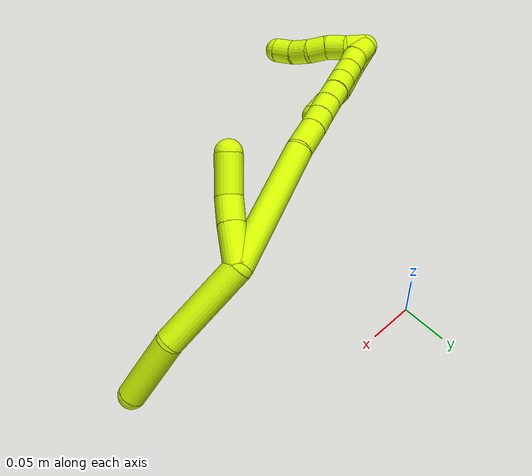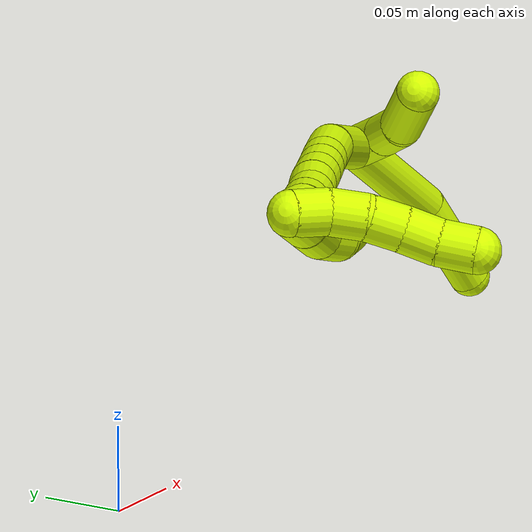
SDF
<sdf version="1.7">
 <world name="default">
  <model name="15">
   <static>0</static>
   <link name="15">
    <collision name="collision-cylinder-e_1_2_8">
     <pose>-0.002143 -0.017551 -0.038202 2.71093 -0.05094 -0.231905</pose>
     <geometry><cylinder><radius>0.0125</radius><length>0.084191</length></cylinder></geometry>
     <surface>
      <friction><ode><mu>1.16</mu><mu2>1.16</mu2><slip1>0</slip1><slip2>0</slip2></ode></friction>
      <contact><ode><kp>1e+06</kp><kd>1</kd><max_vel>0</max_vel><min_depth>0.001</min_depth></ode></contact>
     </surface>
    </collision>
    <visual name="visual-cylinder-e_1_2_8">
     <pose>-0.002143 -0.017551 -0.038202 2.71093 -0.05094 -0.231905</pose>
     <geometry><cylinder><radius>0.0125</radius><length>0.084191</length></cylinder></geometry>
     <material><ambient>0.835294 1 0 1</ambient></material>
    </visual>
    <collision name="collision-cylinder-e_2_8_6">
     <pose>-0.014932 -0.052552 -0.10219 2.54665 -0.329436 -0.993689</pose>
     <geometry><cylinder><radius>0.0125</radius><length>0.065809</length></cylinder></geometry>
     <surface>
      <friction><ode><mu>1.16</mu><mu2>1.16</mu2><slip1>0</slip1><slip2>0</slip2></ode></friction>
      <contact><ode><kp>1e+06</kp><kd>1</kd><max_vel>0</max_vel><min_depth>0.001</min_depth></ode></contact>
     </surface>
    </collision>
    <visual name="visual-cylinder-e_2_8_6">
     <pose>-0.014932 -0.052552 -0.10219 2.54665 -0.329436 -0.993689</pose>
     <geometry><cylinder><radius>0.0125</radius><length>0.065809</length></cylinder></geometry>
     <material><ambient>0.835294 1 0 1</ambient></material>
    </visual>
    <collision name="collision-cylinder-e_1_2_9">
     <pose>0.006412 -0.00949 0.014939 0.56592 0.347599 0.10201</pose>
     <geometry><cylinder><radius>0.0125</radius><length>0.037649</length></cylinder></geometry>
     <surface>
      <friction><ode><mu>1.16</mu><mu2>1.16</mu2><slip1>0</slip1><slip2>0</slip2></ode></friction>
      <contact><ode><kp>1e+06</kp><kd>1</kd><max_vel>0</max_vel><min_depth>0.001</min_depth></ode></contact>
     </surface>
    </collision>
    <visual name="visual-cylinder-e_1_2_9">
     <pose>0.006412 -0.00949 0.014939 0.56592 0.347599 0.10201</pose>
     <geometry><cylinder><radius>0.0125</radius><length>0.037649</length></cylinder></geometry>
     <material><ambient>0.835294 1 0 1</ambient></material>
    </visual>
    <collision name="collision-cylinder-e_2_9_10">
     <pose>0.016825 -0.024763 0.040231 0.509472 0.325314 0.085413</pose>
     <geometry><cylinder><radius>0.0125</radius><length>0.02503</length></cylinder></geometry>
     <surface>
      <friction><ode><mu>1.16</mu><mu2>1.16</mu2><slip1>0</slip1><slip2>0</slip2></ode></friction>
      <contact><ode><kp>1e+06</kp><kd>1</kd><max_vel>0</max_vel><min_depth>0.001</min_depth></ode></contact>
     </surface>
    </collision>
    <visual name="visual-cylinder-e_2_9_10">
     <pose>0.016825 -0.024763 0.040231 0.509472 0.325314 0.085413</pose>
     <geometry><cylinder><radius>0.0125</radius><length>0.02503</length></cylinder></geometry>
     <material><ambient>0.835294 1 0 1</ambient></material>
    </visual>
    <collision name="collision-cylinder-e_3_10_5">
     <pose>0.029966 -0.034005 0.06648 0.214223 0.511979 0.056269</pose>
     <geometry><cylinder><radius>0.0125</radius><length>0.037321</length></cylinder></geometry>
     <surface>
      <friction><ode><mu>1.16</mu><mu2>1.16</mu2><slip1>0</slip1><slip2>0</slip2></ode></friction>
      <contact><ode><kp>1e+06</kp><kd>1</kd><max_vel>0</max_vel><min_depth>0.001</min_depth></ode></contact>
     </surface>
    </collision>
    <visual name="visual-cylinder-e_3_10_5">
     <pose>0.029966 -0.034005 0.06648 0.214223 0.511979 0.056269</pose>
     <geometry><cylinder><radius>0.0125</radius><length>0.037321</length></cylinder></geometry>
     <material><ambient>0.835294 1 0 1</ambient></material>
    </visual>
    <collision name="collision-cylinder-e_1_2_11">
     <pose>-0.006924 -0.01043 0.061716 0.167413 -0.110175 -0.009253</pose>
     <geometry><cylinder><radius>0.0125</radius><length>0.125945</length></cylinder></geometry>
     <surface>
      <friction><ode><mu>1.16</mu><mu2>1.16</mu2><slip1>0</slip1><slip2>0</slip2></ode></friction>
      <contact><ode><kp>1e+06</kp><kd>1</kd><max_vel>0</max_vel><min_depth>0.001</min_depth></ode></contact>
     </surface>
    </collision>
    <visual name="visual-cylinder-e_1_2_11">
     <pose>-0.006924 -0.01043 0.061716 0.167413 -0.110175 -0.009253</pose>
     <geometry><cylinder><radius>0.0125</radius><length>0.125945</length></cylinder></geometry>
     <material><ambient>0.835294 1 0 1</ambient></material>
    </visual>
    <collision name="collision-cylinder-e_2_11_12">
     <pose>-0.018556 -0.025065 0.137892 0.283028 -0.302988 -0.043492</pose>
     <geometry><cylinder><radius>0.0125</radius><length>0.031557</length></cylinder></geometry>
     <surface>
      <friction><ode><mu>1.16</mu><mu2>1.16</mu2><slip1>0</slip1><slip2>0</slip2></ode></friction>
      <contact><ode><kp>1e+06</kp><kd>1</kd><max_vel>0</max_vel><min_depth>0.001</min_depth></ode></contact>
     </surface>
    </collision>
    <visual name="visual-cylinder-e_2_11_12">
     <pose>-0.018556 -0.025065 0.137892 0.283028 -0.302988 -0.043492</pose>
     <geometry><cylinder><radius>0.0125</radius><length>0.031557</length></cylinder></geometry>
     <material><ambient>0.835294 1 0 1</ambient></material>
    </visual>
    <collision name="collision-cylinder-e_3_12_13">
     <pose>-0.026018 -0.032204 0.161784 0.301555 -0.271997 -0.041575</pose>
     <geometry><cylinder><radius>0.0125</radius><length>0.020507</length></cylinder></geometry>
     <surface>
      <friction><ode><mu>1.16</mu><mu2>1.16</mu2><slip1>0</slip1><slip2>0</slip2></ode></friction>
      <contact><ode><kp>1e+06</kp><kd>1</kd><max_vel>0</max_vel><min_depth>0.001</min_depth></ode></contact>
     </surface>
    </collision>
    <visual name="visual-cylinder-e_3_12_13">
     <pose>-0.026018 -0.032204 0.161784 0.301555 -0.271997 -0.041575</pose>
     <geometry><cylinder><radius>0.0125</radius><length>0.020507</length></cylinder></geometry>
     <material><ambient>0.835294 1 0 1</ambient></material>
    </visual>
    <collision name="collision-cylinder-e_4_13_14">
     <pose>-0.031691 -0.038018 0.180662 0.295918 -0.28724 -0.043103</pose>
     <geometry><cylinder><radius>0.0125</radius><length>0.020597</length></cylinder></geometry>
     <surface>
      <friction><ode><mu>1.16</mu><mu2>1.16</mu2><slip1>0</slip1><slip2>0</slip2></ode></friction>
      <contact><ode><kp>1e+06</kp><kd>1</kd><max_vel>0</max_vel><min_depth>0.001</min_depth></ode></contact>
     </surface>
    </collision>
    <visual name="visual-cylinder-e_4_13_14">
     <pose>-0.031691 -0.038018 0.180662 0.295918 -0.28724 -0.043103</pose>
     <geometry><cylinder><radius>0.0125</radius><length>0.020597</length></cylinder></geometry>
     <material><ambient>0.835294 1 0 1</ambient></material>
    </visual>
    <collision name="collision-cylinder-e_5_14_15">
     <pose>-0.037612 -0.043659 0.199734 0.279365 -0.291439 -0.041262</pose>
     <geometry><cylinder><radius>0.0125</radius><length>0.020909</length></cylinder></geometry>
     <surface>
      <friction><ode><mu>1.16</mu><mu2>1.16</mu2><slip1>0</slip1><slip2>0</slip2></ode></friction>
      <contact><ode><kp>1e+06</kp><kd>1</kd><max_vel>0</max_vel><min_depth>0.001</min_depth></ode></contact>
     </surface>
    </collision>
    <visual name="visual-cylinder-e_5_14_15">
     <pose>-0.037612 -0.043659 0.199734 0.279365 -0.291439 -0.041262</pose>
     <geometry><cylinder><radius>0.0125</radius><length>0.020909</length></cylinder></geometry>
     <material><ambient>0.835294 1 0 1</ambient></material>
    </visual>
    <collision name="collision-cylinder-e_6_15_16">
     <pose>-0.043747 -0.049754 0.218326 0.355979 -0.316313 -0.057366</pose>
     <geometry><cylinder><radius>0.0125</radius><length>0.020132</length></cylinder></geometry>
     <surface>
      <friction><ode><mu>1.16</mu><mu2>1.16</mu2><slip1>0</slip1><slip2>0</slip2></ode></friction>
      <contact><ode><kp>1e+06</kp><kd>1</kd><max_vel>0</max_vel><min_depth>0.001</min_depth></ode></contact>
     </surface>
    </collision>
    <visual name="visual-cylinder-e_6_15_16">
     <pose>-0.043747 -0.049754 0.218326 0.355979 -0.316313 -0.057366</pose>
     <geometry><cylinder><radius>0.0125</radius><length>0.020132</length></cylinder></geometry>
     <material><ambient>0.835294 1 0 1</ambient></material>
    </visual>
    <collision name="collision-cylinder-e_7_16_17">
     <pose>-0.049689 -0.055643 0.23657 0.268715 -0.284213 -0.038674</pose>
     <geometry><cylinder><radius>0.0125</radius><length>0.020049</length></cylinder></geometry>
     <surface>
      <friction><ode><mu>1.16</mu><mu2>1.16</mu2><slip1>0</slip1><slip2>0</slip2></ode></friction>
      <contact><ode><kp>1e+06</kp><kd>1</kd><max_vel>0</max_vel><min_depth>0.001</min_depth></ode></contact>
     </surface>
    </collision>
    <visual name="visual-cylinder-e_7_16_17">
     <pose>-0.049689 -0.055643 0.23657 0.268715 -0.284213 -0.038674</pose>
     <geometry><cylinder><radius>0.0125</radius><length>0.020049</length></cylinder></geometry>
     <material><ambient>0.835294 1 0 1</ambient></material>
    </visual>
    <collision name="collision-cylinder-e_8_17_18">
     <pose>-0.054745 -0.06098 0.255289 0.286574 -0.224248 -0.032487</pose>
     <geometry><cylinder><radius>0.0125</radius><length>0.020191</length></cylinder></geometry>
     <surface>
      <friction><ode><mu>1.16</mu><mu2>1.16</mu2><slip1>0</slip1><slip2>0</slip2></ode></friction>
      <contact><ode><kp>1e+06</kp><kd>1</kd><max_vel>0</max_vel><min_depth>0.001</min_depth></ode></contact>
     </surface>
    </collision>
    <visual name="visual-cylinder-e_8_17_18">
     <pose>-0.054745 -0.06098 0.255289 0.286574 -0.224248 -0.032487</pose>
     <geometry><cylinder><radius>0.0125</radius><length>0.020191</length></cylinder></geometry>
     <material><ambient>0.835294 1 0 1</ambient></material>
    </visual>
    <collision name="collision-cylinder-e_9_18_1">
     <pose>-0.0603 -0.064473 0.2742 0.074889 -0.33536 -0.012682</pose>
     <geometry><cylinder><radius>0.0125</radius><length>0.020113</length></cylinder></geometry>
     <surface>
      <friction><ode><mu>1.16</mu><mu2>1.16</mu2><slip1>0</slip1><slip2>0</slip2></ode></friction>
      <contact><ode><kp>1e+06</kp><kd>1</kd><max_vel>0</max_vel><min_depth>0.001</min_depth></ode></contact>
     </surface>
    </collision>
    <visual name="visual-cylinder-e_9_18_1">
     <pose>-0.0603 -0.064473 0.2742 0.074889 -0.33536 -0.012682</pose>
     <geometry><cylinder><radius>0.0125</radius><length>0.020113</length></cylinder></geometry>
     <material><ambient>0.835294 1 0 1</ambient></material>
    </visual>
    <collision name="collision-cylinder-e_1_1_19">
     <pose>-0.058263 -0.071948 0.278604 2.21349 0.564108 1.04963</pose>
     <geometry><cylinder><radius>0.0125</radius><length>0.02</length></cylinder></geometry>
     <surface>
      <friction><ode><mu>1.16</mu><mu2>1.16</mu2><slip1>0</slip1><slip2>0</slip2></ode></friction>
      <contact><ode><kp>1e+06</kp><kd>1</kd><max_vel>0</max_vel><min_depth>0.001</min_depth></ode></contact>
     </surface>
    </collision>
    <visual name="visual-cylinder-e_1_1_19">
     <pose>-0.058263 -0.071948 0.278604 2.21349 0.564108 1.04963</pose>
     <geometry><cylinder><radius>0.0125</radius><length>0.02</length></cylinder></geometry>
     <material><ambient>0.835294 1 0 1</ambient></material>
    </visual>
    <collision name="collision-cylinder-e_2_19_20">
     <pose>-0.049135 -0.087505 0.270644 1.88889 0.387771 0.529989</pose>
     <geometry><cylinder><radius>0.0125</radius><length>0.02</length></cylinder></geometry>
     <surface>
      <friction><ode><mu>1.16</mu><mu2>1.16</mu2><slip1>0</slip1><slip2>0</slip2></ode></friction>
      <contact><ode><kp>1e+06</kp><kd>1</kd><max_vel>0</max_vel><min_depth>0.001</min_depth></ode></contact>
     </surface>
    </collision>
    <visual name="visual-cylinder-e_2_19_20">
     <pose>-0.049135 -0.087505 0.270644 1.88889 0.387771 0.529989</pose>
     <geometry><cylinder><radius>0.0125</radius><length>0.02</length></cylinder></geometry>
     <material><ambient>0.835294 1 0 1</ambient></material>
    </visual>
    <collision name="collision-cylinder-e_3_20_21">
     <pose>-0.043084 -0.10492 0.263219 2.05454 0.228941 0.376063</pose>
     <geometry><cylinder><radius>0.0125</radius><length>0.02</length></cylinder></geometry>
     <surface>
      <friction><ode><mu>1.16</mu><mu2>1.16</mu2><slip1>0</slip1><slip2>0</slip2></ode></friction>
      <contact><ode><kp>1e+06</kp><kd>1</kd><max_vel>0</max_vel><min_depth>0.001</min_depth></ode></contact>
     </surface>
    </collision>
    <visual name="visual-cylinder-e_3_20_21">
     <pose>-0.043084 -0.10492 0.263219 2.05454 0.228941 0.376063</pose>
     <geometry><cylinder><radius>0.0125</radius><length>0.02</length></cylinder></geometry>
     <material><ambient>0.835294 1 0 1</ambient></material>
    </visual>
    <collision name="collision-cylinder-e_4_21_22">
     <pose>-0.039141 -0.12316 0.256524 1.79229 0.168176 0.209981</pose>
     <geometry><cylinder><radius>0.0125</radius><length>0.02</length></cylinder></geometry>
     <surface>
      <friction><ode><mu>1.16</mu><mu2>1.16</mu2><slip1>0</slip1><slip2>0</slip2></ode></friction>
      <contact><ode><kp>1e+06</kp><kd>1</kd><max_vel>0</max_vel><min_depth>0.001</min_depth></ode></contact>
     </surface>
    </collision>
    <visual name="visual-cylinder-e_4_21_22">
     <pose>-0.039141 -0.12316 0.256524 1.79229 0.168176 0.209981</pose>
     <geometry><cylinder><radius>0.0125</radius><length>0.02</length></cylinder></geometry>
     <material><ambient>0.835294 1 0 1</ambient></material>
    </visual>
    <collision name="collision-cylinder-e_5_22_4">
     <pose>-0.034266 -0.142191 0.253286 1.68416 0.325824 0.364209</pose>
     <geometry><cylinder><radius>0.0125</radius><length>0.02</length></cylinder></geometry>
     <surface>
      <friction><ode><mu>1.16</mu><mu2>1.16</mu2><slip1>0</slip1><slip2>0</slip2></ode></friction>
      <contact><ode><kp>1e+06</kp><kd>1</kd><max_vel>0</max_vel><min_depth>0.001</min_depth></ode></contact>
     </surface>
    </collision>
    <visual name="visual-cylinder-e_5_22_4">
     <pose>-0.034266 -0.142191 0.253286 1.68416 0.325824 0.364209</pose>
     <geometry><cylinder><radius>0.0125</radius><length>0.02</length></cylinder></geometry>
     <material><ambient>0.835294 1 0 1</ambient></material>
    </visual>
    <collision name="collision-cylinder-e_1_1_23">
     <pose>-0.063791 -0.06658 0.27145 3.02777 -0.014777 -0.257937</pose>
     <geometry><cylinder><radius>0.0125</radius><length>0.0246</length></cylinder></geometry>
     <surface>
      <friction><ode><mu>1.16</mu><mu2>1.16</mu2><slip1>0</slip1><slip2>0</slip2></ode></friction>
      <contact><ode><kp>1e+06</kp><kd>1</kd><max_vel>0</max_vel><min_depth>0.001</min_depth></ode></contact>
     </surface>
    </collision>
    <visual name="visual-cylinder-e_1_1_23">
     <pose>-0.063791 -0.06658 0.27145 3.02777 -0.014777 -0.257937</pose>
     <geometry><cylinder><radius>0.0125</radius><length>0.0246</length></cylinder></geometry>
     <material><ambient>0.835294 1 0 1</ambient></material>
    </visual>
    <collision name="collision-cylinder-e_2_23_24">
     <pose>-0.064001 -0.068167 0.242521 3.13022 -0.001655 -0.289124</pose>
     <geometry><cylinder><radius>0.0125</radius><length>0.033422</length></cylinder></geometry>
     <surface>
      <friction><ode><mu>1.16</mu><mu2>1.16</mu2><slip1>0</slip1><slip2>0</slip2></ode></friction>
      <contact><ode><kp>1e+06</kp><kd>1</kd><max_vel>0</max_vel><min_depth>0.001</min_depth></ode></contact>
     </surface>
    </collision>
    <visual name="visual-cylinder-e_2_23_24">
     <pose>-0.064001 -0.068167 0.242521 3.13022 -0.001655 -0.289124</pose>
     <geometry><cylinder><radius>0.0125</radius><length>0.033422</length></cylinder></geometry>
     <material><ambient>0.835294 1 0 1</ambient></material>
    </visual>
    <collision name="collision-cylinder-e_3_24_25">
     <pose>-0.061779 -0.070395 0.215716 2.94235 0.215039 1.64755</pose>
     <geometry><cylinder><radius>0.0125</radius><length>0.021082</length></cylinder></geometry>
     <surface>
      <friction><ode><mu>1.16</mu><mu2>1.16</mu2><slip1>0</slip1><slip2>0</slip2></ode></friction>
      <contact><ode><kp>1e+06</kp><kd>1</kd><max_vel>0</max_vel><min_depth>0.001</min_depth></ode></contact>
     </surface>
    </collision>
    <visual name="visual-cylinder-e_3_24_25">
     <pose>-0.061779 -0.070395 0.215716 2.94235 0.215039 1.64755</pose>
     <geometry><cylinder><radius>0.0125</radius><length>0.021082</length></cylinder></geometry>
     <material><ambient>0.835294 1 0 1</ambient></material>
    </visual>
    <collision name="collision-cylinder-e_4_25_3">
     <pose>-0.056143 -0.071054 0.195835 -3.0016 0.330069 -2.34471</pose>
     <geometry><cylinder><radius>0.0125</radius><length>0.020895</length></cylinder></geometry>
     <surface>
      <friction><ode><mu>1.16</mu><mu2>1.16</mu2><slip1>0</slip1><slip2>0</slip2></ode></friction>
      <contact><ode><kp>1e+06</kp><kd>1</kd><max_vel>0</max_vel><min_depth>0.001</min_depth></ode></contact>
     </surface>
    </collision>
    <visual name="visual-cylinder-e_4_25_3">
     <pose>-0.056143 -0.071054 0.195835 -3.0016 0.330069 -2.34471</pose>
     <geometry><cylinder><radius>0.0125</radius><length>0.020895</length></cylinder></geometry>
     <material><ambient>0.835294 1 0 1</ambient></material>
    </visual>
    <collision name="collision-sphere-3">
     <pose>-0.052757 -0.069675 0.186048 0 -0 0</pose>
     <geometry><sphere><radius>0.0125</radius></sphere></geometry>
     <surface>
      <friction><ode><mu>1.16</mu><mu2>1.16</mu2><slip1>0</slip1><slip2>0</slip2></ode></friction>
      <contact><ode><kp>1e+06</kp><kd>1</kd><max_vel>0</max_vel><min_depth>0.001</min_depth></ode></contact>
     </surface>
    </collision>
    <visual name="visual-sphere-3">
     <pose>-0.052757 -0.069675 0.186048 0 -0 0</pose>
     <geometry><sphere><radius>0.0125</radius></sphere></geometry>
     <material><ambient>0.835294 1 0 1</ambient></material>
    </visual>
    <collision name="collision-sphere-25">
     <pose>-0.05953 -0.072433 0.205622 0 -0 0</pose>
     <geometry><sphere><radius>0.0125</radius></sphere></geometry>
     <surface>
      <friction><ode><mu>1.16</mu><mu2>1.16</mu2><slip1>0</slip1><slip2>0</slip2></ode></friction>
      <contact><ode><kp>1e+06</kp><kd>1</kd><max_vel>0</max_vel><min_depth>0.001</min_depth></ode></contact>
     </surface>
    </collision>
    <visual name="visual-sphere-25">
     <pose>-0.05953 -0.072433 0.205622 0 -0 0</pose>
     <geometry><sphere><radius>0.0125</radius></sphere></geometry>
     <material><ambient>0.835294 1 0 1</ambient></material>
    </visual>
    <collision name="collision-sphere-24">
     <pose>-0.064028 -0.068357 0.225811 0 -0 0</pose>
     <geometry><sphere><radius>0.0125</radius></sphere></geometry>
     <surface>
      <friction><ode><mu>1.16</mu><mu2>1.16</mu2><slip1>0</slip1><slip2>0</slip2></ode></friction>
      <contact><ode><kp>1e+06</kp><kd>1</kd><max_vel>0</max_vel><min_depth>0.001</min_depth></ode></contact>
     </surface>
    </collision>
    <visual name="visual-sphere-24">
     <pose>-0.064028 -0.068357 0.225811 0 -0 0</pose>
     <geometry><sphere><radius>0.0125</radius></sphere></geometry>
     <material><ambient>0.835294 1 0 1</ambient></material>
    </visual>
    <collision name="collision-sphere-23">
     <pose>-0.063973 -0.067977 0.259231 0 -0 0</pose>
     <geometry><sphere><radius>0.0125</radius></sphere></geometry>
     <surface>
      <friction><ode><mu>1.16</mu><mu2>1.16</mu2><slip1>0</slip1><slip2>0</slip2></ode></friction>
      <contact><ode><kp>1e+06</kp><kd>1</kd><max_vel>0</max_vel><min_depth>0.001</min_depth></ode></contact>
     </surface>
    </collision>
    <visual name="visual-sphere-23">
     <pose>-0.063973 -0.067977 0.259231 0 -0 0</pose>
     <geometry><sphere><radius>0.0125</radius></sphere></geometry>
     <material><ambient>0.835294 1 0 1</ambient></material>
    </visual>
    <collision name="collision-sphere-4">
     <pose>-0.031065 -0.151604 0.252214 0 -0 0</pose>
     <geometry><sphere><radius>0.0125</radius></sphere></geometry>
     <surface>
      <friction><ode><mu>1.16</mu><mu2>1.16</mu2><slip1>0</slip1><slip2>0</slip2></ode></friction>
      <contact><ode><kp>1e+06</kp><kd>1</kd><max_vel>0</max_vel><min_depth>0.001</min_depth></ode></contact>
     </surface>
    </collision>
    <visual name="visual-sphere-4">
     <pose>-0.031065 -0.151604 0.252214 0 -0 0</pose>
     <geometry><sphere><radius>0.0125</radius></sphere></geometry>
     <material><ambient>0.835294 1 0 1</ambient></material>
    </visual>
    <collision name="collision-sphere-22">
     <pose>-0.037467 -0.132778 0.254358 0 -0 0</pose>
     <geometry><sphere><radius>0.0125</radius></sphere></geometry>
     <surface>
      <friction><ode><mu>1.16</mu><mu2>1.16</mu2><slip1>0</slip1><slip2>0</slip2></ode></friction>
      <contact><ode><kp>1e+06</kp><kd>1</kd><max_vel>0</max_vel><min_depth>0.001</min_depth></ode></contact>
     </surface>
    </collision>
    <visual name="visual-sphere-22">
     <pose>-0.037467 -0.132778 0.254358 0 -0 0</pose>
     <geometry><sphere><radius>0.0125</radius></sphere></geometry>
     <material><ambient>0.835294 1 0 1</ambient></material>
    </visual>
    <collision name="collision-sphere-21">
     <pose>-0.040815 -0.113542 0.25869 0 -0 0</pose>
     <geometry><sphere><radius>0.0125</radius></sphere></geometry>
     <surface>
      <friction><ode><mu>1.16</mu><mu2>1.16</mu2><slip1>0</slip1><slip2>0</slip2></ode></friction>
      <contact><ode><kp>1e+06</kp><kd>1</kd><max_vel>0</max_vel><min_depth>0.001</min_depth></ode></contact>
     </surface>
    </collision>
    <visual name="visual-sphere-21">
     <pose>-0.040815 -0.113542 0.25869 0 -0 0</pose>
     <geometry><sphere><radius>0.0125</radius></sphere></geometry>
     <material><ambient>0.835294 1 0 1</ambient></material>
    </visual>
    <collision name="collision-sphere-20">
     <pose>-0.045354 -0.096299 0.267749 0 -0 0</pose>
     <geometry><sphere><radius>0.0125</radius></sphere></geometry>
     <surface>
      <friction><ode><mu>1.16</mu><mu2>1.16</mu2><slip1>0</slip1><slip2>0</slip2></ode></friction>
      <contact><ode><kp>1e+06</kp><kd>1</kd><max_vel>0</max_vel><min_depth>0.001</min_depth></ode></contact>
     </surface>
    </collision>
    <visual name="visual-sphere-20">
     <pose>-0.045354 -0.096299 0.267749 0 -0 0</pose>
     <geometry><sphere><radius>0.0125</radius></sphere></geometry>
     <material><ambient>0.835294 1 0 1</ambient></material>
    </visual>
    <collision name="collision-sphere-5">
     <pose>0.039108 -0.037464 0.082376 0 -0 0</pose>
     <geometry><sphere><radius>0.0125</radius></sphere></geometry>
     <surface>
      <friction><ode><mu>1.16</mu><mu2>1.16</mu2><slip1>0</slip1><slip2>0</slip2></ode></friction>
      <contact><ode><kp>1e+06</kp><kd>1</kd><max_vel>0</max_vel><min_depth>0.001</min_depth></ode></contact>
     </surface>
    </collision>
    <visual name="visual-sphere-5">
     <pose>0.039108 -0.037464 0.082376 0 -0 0</pose>
     <geometry><sphere><radius>0.0125</radius></sphere></geometry>
     <material><ambient>0.835294 1 0 1</ambient></material>
    </visual>
    <collision name="collision-sphere-10">
     <pose>0.020825 -0.030547 0.050584 0 -0 0</pose>
     <geometry><sphere><radius>0.0125</radius></sphere></geometry>
     <surface>
      <friction><ode><mu>1.16</mu><mu2>1.16</mu2><slip1>0</slip1><slip2>0</slip2></ode></friction>
      <contact><ode><kp>1e+06</kp><kd>1</kd><max_vel>0</max_vel><min_depth>0.001</min_depth></ode></contact>
     </surface>
    </collision>
    <visual name="visual-sphere-10">
     <pose>0.020825 -0.030547 0.050584 0 -0 0</pose>
     <geometry><sphere><radius>0.0125</radius></sphere></geometry>
     <material><ambient>0.835294 1 0 1</ambient></material>
    </visual>
    <collision name="collision-sphere-6">
     <pose>-0.025577 -0.070002 -0.127975 0 -0 0</pose>
     <geometry><sphere><radius>0.0125</radius></sphere></geometry>
     <surface>
      <friction><ode><mu>1.16</mu><mu2>1.16</mu2><slip1>0</slip1><slip2>0</slip2></ode></friction>
      <contact><ode><kp>1e+06</kp><kd>1</kd><max_vel>0</max_vel><min_depth>0.001</min_depth></ode></contact>
     </surface>
    </collision>
    <visual name="visual-sphere-6">
     <pose>-0.025577 -0.070002 -0.127975 0 -0 0</pose>
     <geometry><sphere><radius>0.0125</radius></sphere></geometry>
     <material><ambient>0.835294 1 0 1</ambient></material>
    </visual>
    <collision name="collision-sphere-9">
     <pose>0.012825 -0.01898 0.029879 0 -0 0</pose>
     <geometry><sphere><radius>0.0125</radius></sphere></geometry>
     <surface>
      <friction><ode><mu>1.16</mu><mu2>1.16</mu2><slip1>0</slip1><slip2>0</slip2></ode></friction>
      <contact><ode><kp>1e+06</kp><kd>1</kd><max_vel>0</max_vel><min_depth>0.001</min_depth></ode></contact>
     </surface>
    </collision>
    <visual name="visual-sphere-9">
     <pose>0.012825 -0.01898 0.029879 0 -0 0</pose>
     <geometry><sphere><radius>0.0125</radius></sphere></geometry>
     <material><ambient>0.835294 1 0 1</ambient></material>
    </visual>
    <collision name="collision-sphere-2">
     <geometry><sphere><radius>0.0125</radius></sphere></geometry>
     <surface>
      <friction><ode><mu>1.16</mu><mu2>1.16</mu2><slip1>0</slip1><slip2>0</slip2></ode></friction>
      <contact><ode><kp>1e+06</kp><kd>1</kd><max_vel>0</max_vel><min_depth>0.001</min_depth></ode></contact>
     </surface>
    </collision>
    <visual name="visual-sphere-2">
     <geometry><sphere><radius>0.0125</radius></sphere></geometry>
     <material><ambient>0.835294 1 0 1</ambient></material>
    </visual>
    <collision name="collision-sphere-19">
     <pose>-0.052916 -0.078712 0.273539 0 -0 0</pose>
     <geometry><sphere><radius>0.0125</radius></sphere></geometry>
     <surface>
      <friction><ode><mu>1.16</mu><mu2>1.16</mu2><slip1>0</slip1><slip2>0</slip2></ode></friction>
      <contact><ode><kp>1e+06</kp><kd>1</kd><max_vel>0</max_vel><min_depth>0.001</min_depth></ode></contact>
     </surface>
    </collision>
    <visual name="visual-sphere-19">
     <pose>-0.052916 -0.078712 0.273539 0 -0 0</pose>
     <geometry><sphere><radius>0.0125</radius></sphere></geometry>
     <material><ambient>0.835294 1 0 1</ambient></material>
    </visual>
    <collision name="collision-sphere-8">
     <pose>-0.004287 -0.035102 -0.076405 0 -0 0</pose>
     <geometry><sphere><radius>0.0125</radius></sphere></geometry>
     <surface>
      <friction><ode><mu>1.16</mu><mu2>1.16</mu2><slip1>0</slip1><slip2>0</slip2></ode></friction>
      <contact><ode><kp>1e+06</kp><kd>1</kd><max_vel>0</max_vel><min_depth>0.001</min_depth></ode></contact>
     </surface>
    </collision>
    <visual name="visual-sphere-8">
     <pose>-0.004287 -0.035102 -0.076405 0 -0 0</pose>
     <geometry><sphere><radius>0.0125</radius></sphere></geometry>
     <material><ambient>0.835294 1 0 1</ambient></material>
    </visual>
    <collision name="collision-sphere-11">
     <pose>-0.013848 -0.020859 0.123432 0 -0 0</pose>
     <geometry><sphere><radius>0.0125</radius></sphere></geometry>
     <surface>
      <friction><ode><mu>1.16</mu><mu2>1.16</mu2><slip1>0</slip1><slip2>0</slip2></ode></friction>
      <contact><ode><kp>1e+06</kp><kd>1</kd><max_vel>0</max_vel><min_depth>0.001</min_depth></ode></contact>
     </surface>
    </collision>
    <visual name="visual-sphere-11">
     <pose>-0.013848 -0.020859 0.123432 0 -0 0</pose>
     <geometry><sphere><radius>0.0125</radius></sphere></geometry>
     <material><ambient>0.835294 1 0 1</ambient></material>
    </visual>
    <collision name="collision-sphere-12">
     <pose>-0.023264 -0.029271 0.152353 0 -0 0</pose>
     <geometry><sphere><radius>0.0125</radius></sphere></geometry>
     <surface>
      <friction><ode><mu>1.16</mu><mu2>1.16</mu2><slip1>0</slip1><slip2>0</slip2></ode></friction>
      <contact><ode><kp>1e+06</kp><kd>1</kd><max_vel>0</max_vel><min_depth>0.001</min_depth></ode></contact>
     </surface>
    </collision>
    <visual name="visual-sphere-12">
     <pose>-0.023264 -0.029271 0.152353 0 -0 0</pose>
     <geometry><sphere><radius>0.0125</radius></sphere></geometry>
     <material><ambient>0.835294 1 0 1</ambient></material>
    </visual>
    <collision name="collision-sphere-13">
     <pose>-0.028773 -0.035137 0.171215 0 -0 0</pose>
     <geometry><sphere><radius>0.0125</radius></sphere></geometry>
     <surface>
      <friction><ode><mu>1.16</mu><mu2>1.16</mu2><slip1>0</slip1><slip2>0</slip2></ode></friction>
      <contact><ode><kp>1e+06</kp><kd>1</kd><max_vel>0</max_vel><min_depth>0.001</min_depth></ode></contact>
     </surface>
    </collision>
    <visual name="visual-sphere-13">
     <pose>-0.028773 -0.035137 0.171215 0 -0 0</pose>
     <geometry><sphere><radius>0.0125</radius></sphere></geometry>
     <material><ambient>0.835294 1 0 1</ambient></material>
    </visual>
    <collision name="collision-sphere-14">
     <pose>-0.034608 -0.040898 0.190109 0 -0 0</pose>
     <geometry><sphere><radius>0.0125</radius></sphere></geometry>
     <surface>
      <friction><ode><mu>1.16</mu><mu2>1.16</mu2><slip1>0</slip1><slip2>0</slip2></ode></friction>
      <contact><ode><kp>1e+06</kp><kd>1</kd><max_vel>0</max_vel><min_depth>0.001</min_depth></ode></contact>
     </surface>
    </collision>
    <visual name="visual-sphere-14">
     <pose>-0.034608 -0.040898 0.190109 0 -0 0</pose>
     <geometry><sphere><radius>0.0125</radius></sphere></geometry>
     <material><ambient>0.835294 1 0 1</ambient></material>
    </visual>
    <collision name="collision-sphere-15">
     <pose>-0.040616 -0.04642 0.20936 0 -0 0</pose>
     <geometry><sphere><radius>0.0125</radius></sphere></geometry>
     <surface>
      <friction><ode><mu>1.16</mu><mu2>1.16</mu2><slip1>0</slip1><slip2>0</slip2></ode></friction>
      <contact><ode><kp>1e+06</kp><kd>1</kd><max_vel>0</max_vel><min_depth>0.001</min_depth></ode></contact>
     </surface>
    </collision>
    <visual name="visual-sphere-15">
     <pose>-0.040616 -0.04642 0.20936 0 -0 0</pose>
     <geometry><sphere><radius>0.0125</radius></sphere></geometry>
     <material><ambient>0.835294 1 0 1</ambient></material>
    </visual>
    <collision name="collision-sphere-16">
     <pose>-0.046878 -0.053088 0.227293 0 -0 0</pose>
     <geometry><sphere><radius>0.0125</radius></sphere></geometry>
     <surface>
      <friction><ode><mu>1.16</mu><mu2>1.16</mu2><slip1>0</slip1><slip2>0</slip2></ode></friction>
      <contact><ode><kp>1e+06</kp><kd>1</kd><max_vel>0</max_vel><min_depth>0.001</min_depth></ode></contact>
     </surface>
    </collision>
    <visual name="visual-sphere-16">
     <pose>-0.046878 -0.053088 0.227293 0 -0 0</pose>
     <geometry><sphere><radius>0.0125</radius></sphere></geometry>
     <material><ambient>0.835294 1 0 1</ambient></material>
    </visual>
    <collision name="collision-sphere-17">
     <pose>-0.0525 -0.058197 0.245847 0 -0 0</pose>
     <geometry><sphere><radius>0.0125</radius></sphere></geometry>
     <surface>
      <friction><ode><mu>1.16</mu><mu2>1.16</mu2><slip1>0</slip1><slip2>0</slip2></ode></friction>
      <contact><ode><kp>1e+06</kp><kd>1</kd><max_vel>0</max_vel><min_depth>0.001</min_depth></ode></contact>
     </surface>
    </collision>
    <visual name="visual-sphere-17">
     <pose>-0.0525 -0.058197 0.245847 0 -0 0</pose>
     <geometry><sphere><radius>0.0125</radius></sphere></geometry>
     <material><ambient>0.835294 1 0 1</ambient></material>
    </visual>
    <collision name="collision-sphere-18">
     <pose>-0.05699 -0.063762 0.26473 0 -0 0</pose>
     <geometry><sphere><radius>0.0125</radius></sphere></geometry>
     <surface>
      <friction><ode><mu>1.16</mu><mu2>1.16</mu2><slip1>0</slip1><slip2>0</slip2></ode></friction>
      <contact><ode><kp>1e+06</kp><kd>1</kd><max_vel>0</max_vel><min_depth>0.001</min_depth></ode></contact>
     </surface>
    </collision>
    <visual name="visual-sphere-18">
     <pose>-0.05699 -0.063762 0.26473 0 -0 0</pose>
     <geometry><sphere><radius>0.0125</radius></sphere></geometry>
     <material><ambient>0.835294 1 0 1</ambient></material>
    </visual>
    <collision name="collision-sphere-1">
     <pose>-0.063609 -0.065183 0.283669 0 -0 0</pose>
     <geometry><sphere><radius>0.0125</radius></sphere></geometry>
     <surface>
      <friction><ode><mu>1.16</mu><mu2>1.16</mu2><slip1>0</slip1><slip2>0</slip2></ode></friction>
      <contact><ode><kp>1e+06</kp><kd>1</kd><max_vel>0</max_vel><min_depth>0.001</min_depth></ode></contact>
     </surface>
    </collision>
    <visual name="visual-sphere-1">
     <pose>-0.063609 -0.065183 0.283669 0 -0 0</pose>
     <geometry><sphere><radius>0.0125</radius></sphere></geometry>
     <material><ambient>0.835294 1 0 1</ambient></material>
    </visual>
    <inertial>
     <pose>-0.023559 -0.045024 0.116167 0 -0 0</pose>
     <mass>0.75</mass>
     <inertia><ixx>0.00024</ixx><ixy>0</ixy><ixz>0</ixz><iyy>8.2e-05</iyy><iyz>0</iyz><izz>0.000114</izz></inertia>
    </inertial>
   </link>
   <pose>0.18038 -0.049888 0.182365 0.819861 -0.978814 -0.609322</pose>
  </model>
 </world>
</sdf>
